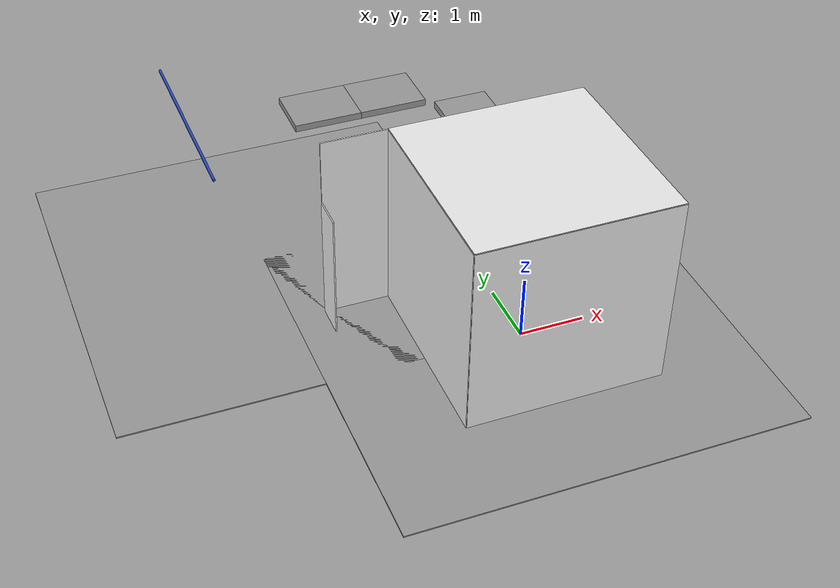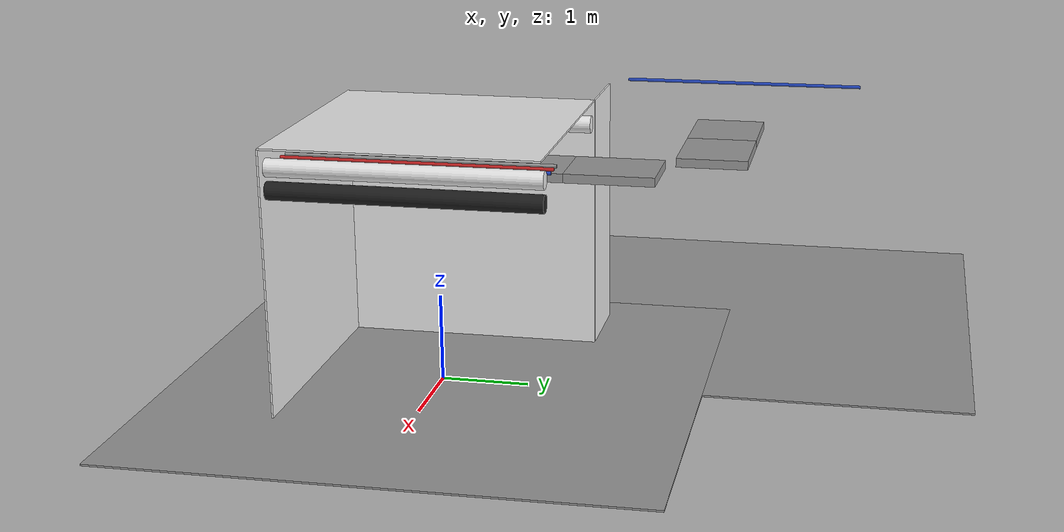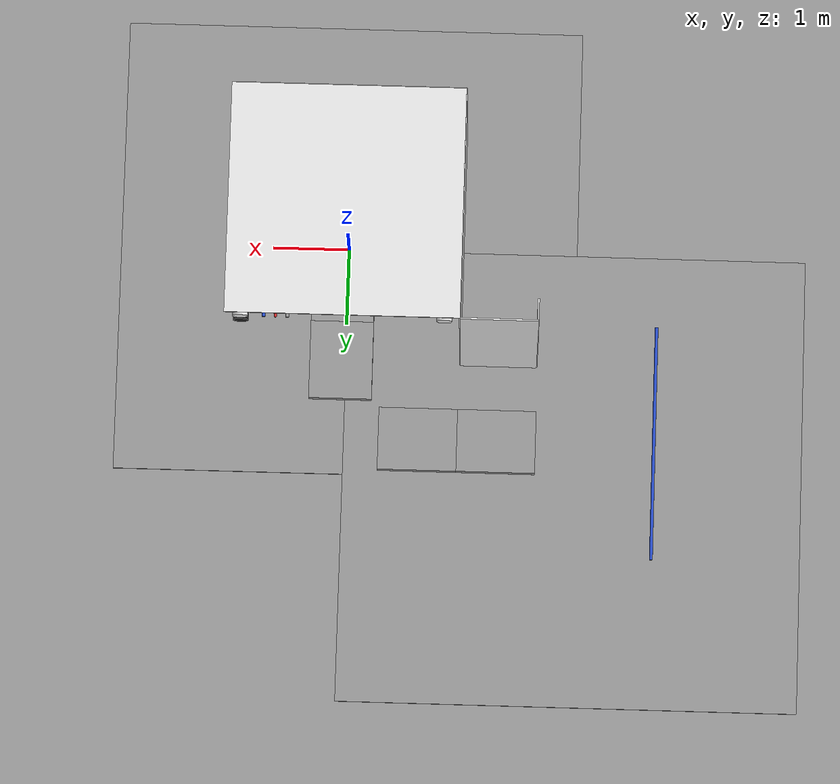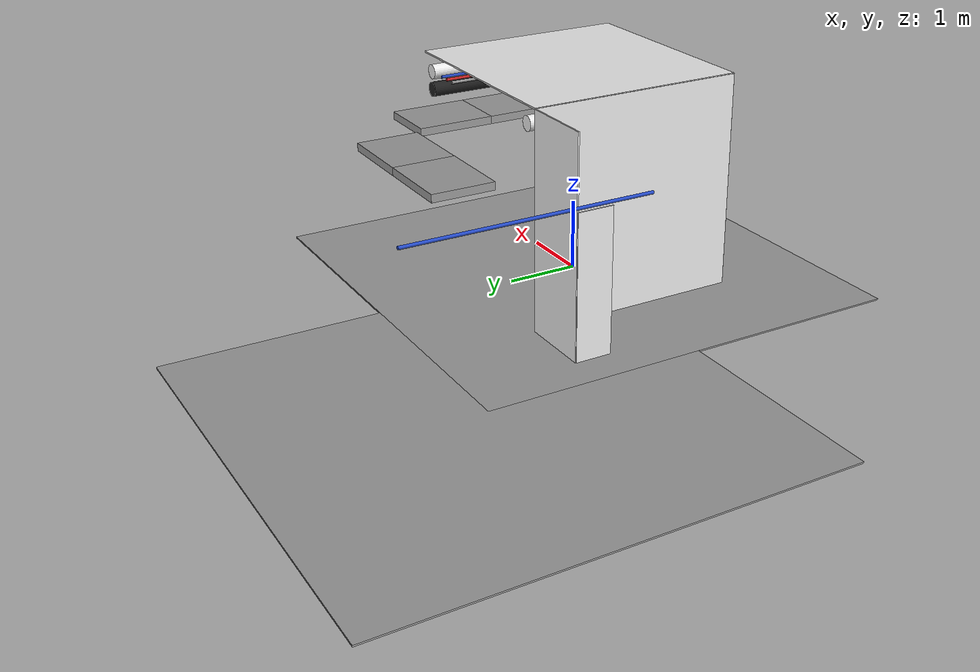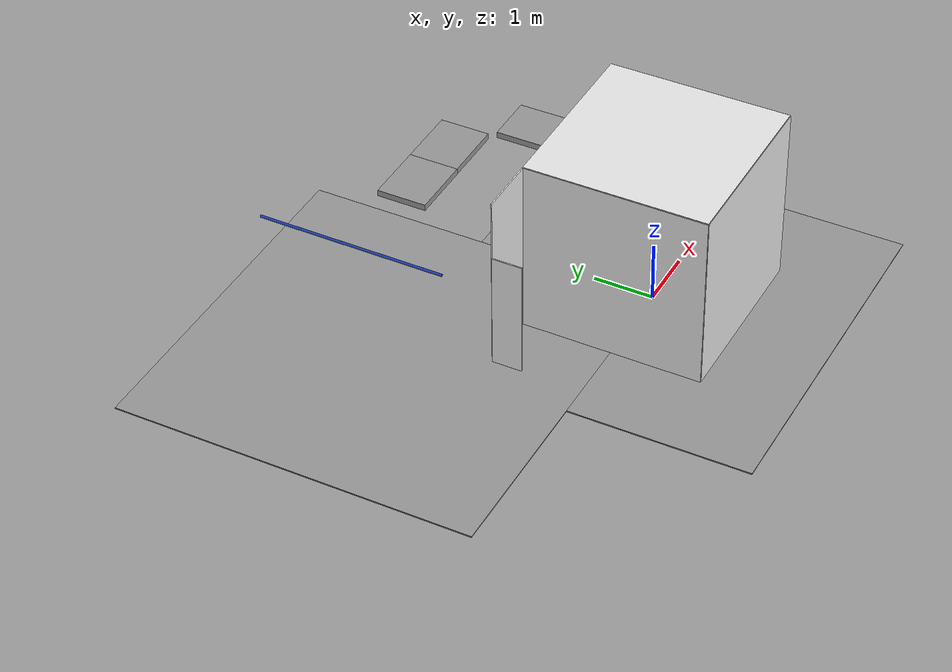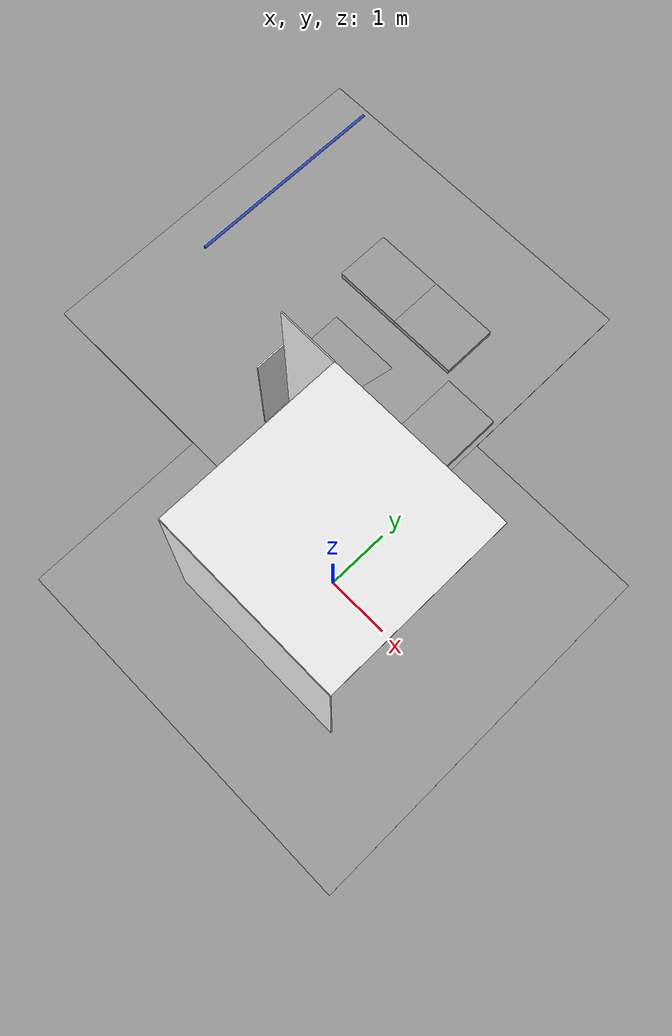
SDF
<sdf version="1.6">
 <world name="default">
  <model name="wall_back_0_0_0_0">
   <static>1</static>
   <pose>0.0 -1.5 1.5 0.0 0.0 0.0</pose>
   <link name="link">
    <collision name="collision"><geometry><box><size>3.0 0.02 3.0</size></box></geometry></collision>
    <visual name="visual">
     <material>
      <script><name>Gazebo/White</name><uri>file://media/materials/scripts/gazebo.material</uri></script>
     </material>
     <geometry><box><size>3.0 0.02 3.0</size></box></geometry>
    </visual>
   </link>
  </model>
  <model name="wall_left_0_0_0_0">
   <static>1</static>
   <pose>-1.5 0.0 1.5 0.0 0.0 1.57</pose>
   <link name="link">
    <collision name="collision"><geometry><box><size>3.0 0.02 3.0</size></box></geometry></collision>
    <visual name="visual">
     <material>
      <script><name>Gazebo/White</name><uri>file://media/materials/scripts/gazebo.material</uri></script>
     </material>
     <geometry><box><size>3.0 0.02 3.0</size></box></geometry>
    </visual>
   </link>
  </model>
  <model name="wall_top_0_0_0_0">
   <static>1</static>
   <pose>0.0 0.0 3.0 1.57 0.0 0.0</pose>
   <link name="link">
    <collision name="collision"><geometry><box><size>3.0 0.02 3.0</size></box></geometry></collision>
    <visual name="visual">
     <material>
      <script><name>Gazebo/White</name><uri>file://media/materials/scripts/gazebo.material</uri></script>
     </material>
     <geometry><box><size>3.0 0.02 3.0</size></box></geometry>
    </visual>
   </link>
  </model>
  <model name="ceiling_1_0_0_0_0">
   <pose>0.0 0.0 2.55 0.0 0.0 0.0</pose>
   <link name="link_1">
    <visual name="visual">
     <geometry><box><size>0.8 1 0.1</size></box></geometry>
     <material>
      <script><uri>file://media/materials/scripts/gazebo.material</uri><name>Gazebo/Grey</name></script>
     </material>
    </visual>
    <collision name="collision"><geometry><box><size>0.8 1 0.1</size></box></geometry></collision>
   </link>
   <static>1</static>
  </model>
  <model name="ceiling_1_0_0_1_0">
   <pose>0.0 -1.0 2.55 0.0 0.0 0.0</pose>
   <link name="link_1">
    <visual name="visual">
     <geometry><box><size>0.8 1 0.1</size></box></geometry>
     <material>
      <script><uri>file://media/materials/scripts/gazebo.material</uri><name>Gazebo/Grey</name></script>
     </material>
    </visual>
    <collision name="collision"><geometry><box><size>0.8 1 0.1</size></box></geometry></collision>
   </link>
   <static>1</static>
  </model>
  <model name="ceiling_1_0_0_2_0">
   <pose>0.0 1.0 2.55 0.0 0.0 0.0</pose>
   <link name="link_1">
    <visual name="visual">
     <geometry><box><size>0.8 1 0.1</size></box></geometry>
     <material>
      <script><uri>file://media/materials/scripts/gazebo.material</uri><name>Gazebo/Grey</name></script>
     </material>
    </visual>
    <collision name="collision"><geometry><box><size>0.8 1 0.1</size></box></geometry></collision>
   </link>
   <static>1</static>
  </model>
  <model name="white_pipe_left_0_0_0_0">
   <static>1</static>
   <pose>0.0 0.0 2.76 0.0 0.0 0.0</pose>
   <link name="link_0">
    <visual name="visual">
     <pose>-1.3 0 0 1.57 0 0</pose>
     <geometry><cylinder><radius>0.1</radius><length>3.0</length></cylinder></geometry>
     <material>
      <script><uri>file://media/materials/scripts/gazebo.material</uri><name>Gazebo/White</name></script>
     </material>
    </visual>
    <collision name="collision">
     <pose>-1.3 0 0 1.57 0 0</pose>
     <geometry><cylinder><radius>0.1</radius><length>3.0</length></cylinder></geometry>
    </collision>
   </link>
  </model>
  <model name="white_pipe_right_0_0_0_0">
   <static>1</static>
   <pose>0.0 0.0 2.76 0.0 0.0 0.0</pose>
   <link name="link_0">
    <visual name="visual">
     <pose>1.3 0 0 1.57 0 0</pose>
     <geometry><cylinder><radius>0.1</radius><length>3.0</length></cylinder></geometry>
     <material>
      <script><uri>file://media/materials/scripts/gazebo.material</uri><name>Gazebo/White</name></script>
     </material>
    </visual>
    <collision name="collision">
     <pose>1.3 0 0 1.57 0 0</pose>
     <geometry><cylinder><radius>0.1</radius><length>3.0</length></cylinder></geometry>
    </collision>
   </link>
  </model>
  <model name="black_pipe_right_0_0_0_0">
   <static>1</static>
   <pose>0.0 0.0 2.76 0.0 0.0 0.0</pose>
   <link name="link_0">
    <visual name="visual">
     <pose>1.3 0 -0.25 1.57 0 0</pose>
     <geometry><cylinder><radius>0.1</radius><length>3.0</length></cylinder></geometry>
     <material>
      <script><uri>file://media/materials/scripts/gazebo.material</uri><name>Gazebo/Black</name></script>
     </material>
    </visual>
    <collision name="collision">
     <pose>1.3 0 -0.25 1.57 0 0</pose>
     <geometry><cylinder><radius>0.1</radius><length>3.0</length></cylinder></geometry>
    </collision>
   </link>
  </model>
  <model name="grey_pipe_right_0_0_0_0">
   <static>1</static>
   <pose>0.0 0.0 2.76 0.0 0.0 0.0</pose>
   <link name="link_0">
    <visual name="visual">
     <pose>0.7 0 0 1.57 0 0</pose>
     <geometry><cylinder><radius>0.02</radius><length>3.0</length></cylinder></geometry>
     <material>
      <script><uri>file://media/materials/scripts/gazebo.material</uri><name>Gazebo/Grey</name></script>
     </material>
    </visual>
    <collision name="collision">
     <pose>0.7 0 0 1.57 0 0</pose>
     <geometry><cylinder><radius>0.02</radius><length>3.0</length></cylinder></geometry>
    </collision>
   </link>
  </model>
  <model name="red_pipe_right_0_0_0_0">
   <static>1</static>
   <pose>0.0 0.0 2.76 0.0 0.0 0.0</pose>
   <link name="link_0">
    <visual name="visual">
     <pose>0.85 0 0 1.57 0 0</pose>
     <geometry><cylinder><radius>0.02</radius><length>3.0</length></cylinder></geometry>
     <material>
      <script><uri>file://media/materials/scripts/gazebo.material</uri><name>Gazebo/Red</name></script>
     </material>
    </visual>
    <collision name="collision">
     <pose>0.85 0 0 1.57 0 0</pose>
     <geometry><cylinder><radius>0.02</radius><length>3.0</length></cylinder></geometry>
    </collision>
   </link>
  </model>
  <model name="blue_pipe_right_0_0_0_0">
   <static>1</static>
   <pose>0.0 0.0 2.76 0.0 0.0 0.0</pose>
   <link name="link_0">
    <visual name="visual">
     <pose>1 0 0 1.57 0 0</pose>
     <geometry><cylinder><radius>0.02</radius><length>3.0</length></cylinder></geometry>
     <material>
      <script><uri>file://media/materials/scripts/gazebo.material</uri><name>Gazebo/Blue</name></script>
     </material>
    </visual>
    <collision name="collision">
     <pose>1 0 0 1.57 0 0</pose>
     <geometry><cylinder><radius>0.02</radius><length>3.0</length></cylinder></geometry>
    </collision>
   </link>
  </model>
  <model name="wall_bottom_0_0_0_0">
   <static>1</static>
   <link name="link">
    <collision name="collision"><geometry><box><size>6.0 6.0 0.02</size></box></geometry></collision>
    <visual name="visual">
     <material>
      <script><name>Gazebo/Grey</name><uri>file://media/materials/scripts/gazebo.material</uri></script>
     </material>
     <geometry><box><size>6.0 6.0 0.02</size></box></geometry>
    </visual>
   </link>
  </model>
  <model name="ceiling_1_0_1_0_3">
   <pose>0.0 2.0 2.55 0.0 0.0 0.0</pose>
   <link name="link_1">
    <visual name="visual">
     <geometry><box><size>0.8 1 0.1</size></box></geometry>
     <material>
      <script><uri>file://media/materials/scripts/gazebo.material</uri><name>Gazebo/Grey</name></script>
     </material>
    </visual>
    <collision name="collision"><geometry><box><size>0.8 1 0.1</size></box></geometry></collision>
   </link>
   <static>1</static>
  </model>
  <model name="ceiling_1_0_1_1_3">
   <pose>-1.0 3.0 2.55 0.0 0.0 1.57</pose>
   <link name="link_1">
    <visual name="visual">
     <geometry><box><size>0.8 1 0.1</size></box></geometry>
     <material>
      <script><uri>file://media/materials/scripts/gazebo.material</uri><name>Gazebo/Grey</name></script>
     </material>
    </visual>
    <collision name="collision"><geometry><box><size>0.8 1 0.1</size></box></geometry></collision>
   </link>
   <static>1</static>
  </model>
  <model name="ceiling_1_-1_1_0_2">
   <pose>-2.0 3.0 2.55 0.0 0.0 1.57</pose>
   <link name="link_1">
    <visual name="visual">
     <geometry><box><size>0.8 1 0.1</size></box></geometry>
     <material>
      <script><uri>file://media/materials/scripts/gazebo.material</uri><name>Gazebo/Grey</name></script>
     </material>
    </visual>
    <collision name="collision"><geometry><box><size>0.8 1 0.1</size></box></geometry></collision>
   </link>
   <static>1</static>
  </model>
  <model name="blue_pipe_right_1_-1_1_0_2">
   <static>1</static>
   <pose>-3.0 3.0 2.76 0.0 0.0 3.14</pose>
   <link name="link_0">
    <visual name="visual">
     <pose>1 0 0 1.57 0 0</pose>
     <geometry><cylinder><radius>0.02</radius><length>3.0</length></cylinder></geometry>
     <material>
      <script><uri>file://media/materials/scripts/gazebo.material</uri><name>Gazebo/Blue</name></script>
     </material>
    </visual>
    <collision name="collision">
     <pose>1 0 0 1.57 0 0</pose>
     <geometry><cylinder><radius>0.02</radius><length>3.0</length></cylinder></geometry>
    </collision>
   </link>
  </model>
  <model name="wall_bottom_-1_1_0_2">
   <static>1</static>
   <pose>-3.0 3.0 0.0 0.0 0.0 1.57</pose>
   <link name="link">
    <collision name="collision"><geometry><box><size>6.0 6.0 0.02</size></box></geometry></collision>
    <visual name="visual">
     <material>
      <script><name>Gazebo/Grey</name><uri>file://media/materials/scripts/gazebo.material</uri></script>
     </material>
     <geometry><box><size>6.0 6.0 0.02</size></box></geometry>
    </visual>
   </link>
  </model>
  <model name="wall_left_front_right_-1_1_0_2">
   <static>1</static>
   <pose>-2.0 1.5 1.5 0.0 0.0 3.14</pose>
   <link name="link">
    <collision name="collision"><geometry><box><size>1.0 0.02 3.0</size></box></geometry></collision>
    <visual name="visual">
     <material>
      <script><name>Gazebo/White</name><uri>file://media/materials/scripts/gazebo.material</uri></script>
     </material>
     <geometry><box><size>1.0 0.02 3.0</size></box></geometry>
    </visual>
   </link>
  </model>
  <model name="wall_left_inside_right_-1_1_0_2">
   <static>1</static>
   <pose>-2.5 1.25 1.0 0.0 0.0 1.57</pose>
   <link name="link">
    <collision name="collision"><geometry><box><size>0.5 0.02 2</size></box></geometry></collision>
    <visual name="visual">
     <material>
      <script><name>Gazebo/White</name><uri>file://media/materials/scripts/gazebo.material</uri></script>
     </material>
     <geometry><box><size>0.5 0.02 2</size></box></geometry>
    </visual>
   </link>
  </model>
 </world>
</sdf>
